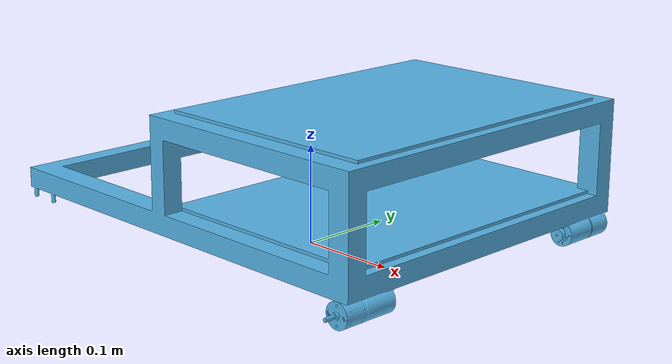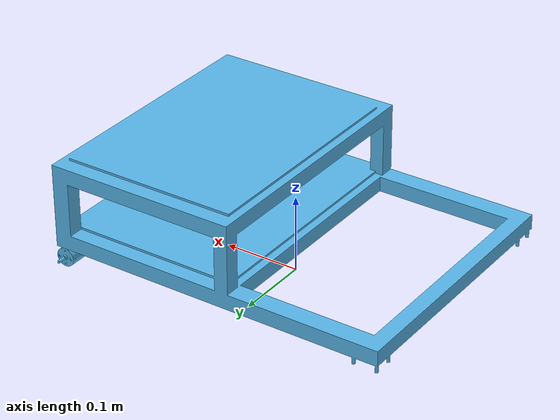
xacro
<?xml version="1.0"?>
<robot xmlns:xacro="http://www.ros.org/wiki/xacro" name="sweebo">
<link name="base_footprint"/>

<link name="base_link">
    <visual>
        <origin xyz="0.0 0.0 0.0" rpy="0.0 0.0 0.0"/>
        <geometry>
           <mesh filename = "package://sweebo_description/meshes/base_link.stl" scale="0.001 0.001 0.001"/>
        </geometry>
    </visual>
    <collision>
        <origin xyz="0.0 0.0 0.0" rpy="0.0 0.0 0.0"/>
        <geometry>
            <mesh filename = "package://sweebo_description/meshes/base_link.stl" scale="0.001 0.001 0.001"/>
        </geometry>
    </collision>
</link>
<joint name="base_joint" type="fixed">
    <origin xyz="0.0 0.0 0.0" rpy="0.0 0.0 0.0"/>
    <parent link="base_footprint"/>
    <child link="base_link"/>
</joint>

</robot>
